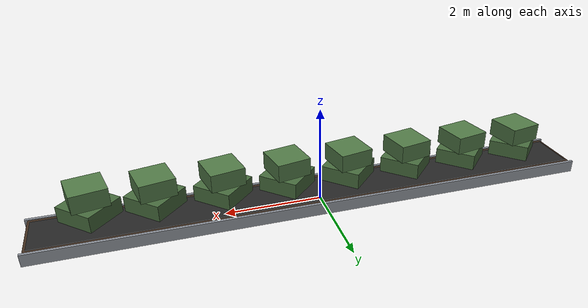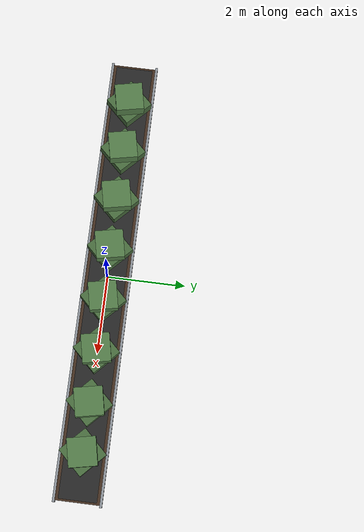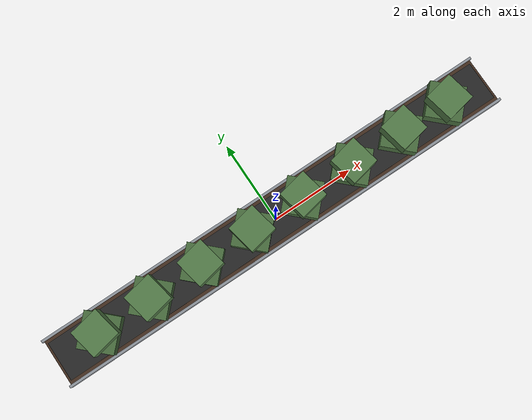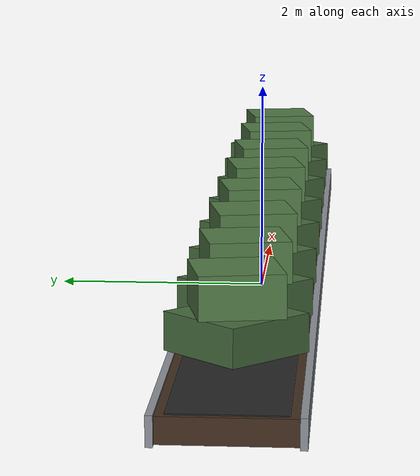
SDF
<?xml version="1.0" ?>
<sdf version="1.9">
  <model name="eggplant_bed">
    <static>true</static>
    <link name="bed_link">
      <pose>0 0 0 0 0 0</pose>
      <!-- Raised Bed Soil & Structure -->
      <visual name="soil_surface">
        <pose>0 0 0.12 0 0 0</pose>
        <geometry><box><size>11.4 1.1 0.22</size></box></geometry>
        <material><ambient>0.2 0.14 0.09 1</ambient><diffuse>0.26 0.18 0.12 1</diffuse></material>
      </visual>
      <visual name="mulch_strip">
        <pose>0 0 0.235 0 0 0</pose>
        <geometry><box><size>11.3 0.95 0.01</size></box></geometry>
        <material><ambient>0.1 0.1 0.1 1</ambient><diffuse>0.15 0.15 0.15 1</diffuse></material>
      </visual>
      <visual name="border_left">
        <pose>0 -0.58 0.125 0 0 0</pose>
        <geometry><box><size>11.5 0.06 0.25</size></box></geometry>
        <material><ambient>0.45 0.47 0.5 1</ambient><diffuse>0.55 0.57 0.6 1</diffuse></material>
      </visual>
      <visual name="border_right">
        <pose>0 0.58 0.125 0 0 0</pose>
        <geometry><box><size>11.5 0.06 0.25</size></box></geometry>
        <material><ambient>0.45 0.47 0.5 1</ambient><diffuse>0.55 0.57 0.6 1</diffuse></material>
      </visual>
      <visual name="canopy_low_1"><pose>-4.5 0 0.6 0 0 0.8</pose><geometry><box><size>0.82 0.82 0.32</size></box></geometry><material><ambient>0.2 0.32 0.18 1</ambient><diffuse>0.28 0.42 0.24 1</diffuse></material></visual>
      <visual name="canopy_top_1"><pose>-4.5 0 0.95 0 0 0.2</pose><geometry><box><size>0.7 0.7 0.36</size></box></geometry><material><ambient>0.24 0.36 0.2 1</ambient><diffuse>0.32 0.48 0.28 1</diffuse></material></visual>
      <visual name="egg_top_1"><pose>-4.32 0.14 0.85 0.3 0 0</pose><geometry><cylinder><radius>0.085</radius><length>0.26</length></cylinder></geometry><material><ambient>0.2 0.02 0.38 1</ambient><diffuse>0.32 0.04 0.58 1</diffuse></material></visual>
      <visual name="egg_calyx_1"><pose>-4.32 0.14 0.98 0 0 0</pose><geometry><cylinder><radius>0.05</radius><length>0.05</length></cylinder></geometry><material><ambient>0.2 0.5 0.2 1</ambient><diffuse>0.28 0.65 0.28 1</diffuse></material></visual>
      <visual name="egg_mid_1"><pose>-4.7 -0.16 0.75 -0.3 0 0</pose><geometry><cylinder><radius>0.08</radius><length>0.25</length></cylinder></geometry><material><ambient>0.2 0.02 0.38 1</ambient><diffuse>0.32 0.04 0.58 1</diffuse></material></visual>
      <visual name="canopy_low_2"><pose>-3.2 0 0.6 0 0 0.8</pose><geometry><box><size>0.82 0.82 0.32</size></box></geometry><material><ambient>0.2 0.32 0.18 1</ambient><diffuse>0.28 0.42 0.24 1</diffuse></material></visual>
      <visual name="canopy_top_2"><pose>-3.2 0 0.95 0 0 0.2</pose><geometry><box><size>0.7 0.7 0.36</size></box></geometry><material><ambient>0.24 0.36 0.2 1</ambient><diffuse>0.32 0.48 0.28 1</diffuse></material></visual>
      <visual name="egg_top_2"><pose>-3.02 0.14 0.85 0.3 0 0</pose><geometry><cylinder><radius>0.085</radius><length>0.26</length></cylinder></geometry><material><ambient>0.2 0.02 0.38 1</ambient><diffuse>0.32 0.04 0.58 1</diffuse></material></visual>
      <visual name="egg_calyx_2"><pose>-3.02 0.14 0.98 0 0 0</pose><geometry><cylinder><radius>0.05</radius><length>0.05</length></cylinder></geometry><material><ambient>0.2 0.5 0.2 1</ambient><diffuse>0.28 0.65 0.28 1</diffuse></material></visual>
      <visual name="egg_mid_2"><pose>-3.4000000000000004 -0.16 0.75 -0.3 0 0</pose><geometry><cylinder><radius>0.08</radius><length>0.25</length></cylinder></geometry><material><ambient>0.2 0.02 0.38 1</ambient><diffuse>0.32 0.04 0.58 1</diffuse></material></visual>
      <visual name="canopy_low_3"><pose>-1.9 0 0.6 0 0 0.8</pose><geometry><box><size>0.82 0.82 0.32</size></box></geometry><material><ambient>0.2 0.32 0.18 1</ambient><diffuse>0.28 0.42 0.24 1</diffuse></material></visual>
      <visual name="canopy_top_3"><pose>-1.9 0 0.95 0 0 0.2</pose><geometry><box><size>0.7 0.7 0.36</size></box></geometry><material><ambient>0.24 0.36 0.2 1</ambient><diffuse>0.32 0.48 0.28 1</diffuse></material></visual>
      <visual name="egg_top_3"><pose>-1.72 0.14 0.85 0.3 0 0</pose><geometry><cylinder><radius>0.085</radius><length>0.26</length></cylinder></geometry><material><ambient>0.2 0.02 0.38 1</ambient><diffuse>0.32 0.04 0.58 1</diffuse></material></visual>
      <visual name="egg_calyx_3"><pose>-1.72 0.14 0.98 0 0 0</pose><geometry><cylinder><radius>0.05</radius><length>0.05</length></cylinder></geometry><material><ambient>0.2 0.5 0.2 1</ambient><diffuse>0.28 0.65 0.28 1</diffuse></material></visual>
      <visual name="egg_mid_3"><pose>-2.1 -0.16 0.75 -0.3 0 0</pose><geometry><cylinder><radius>0.08</radius><length>0.25</length></cylinder></geometry><material><ambient>0.2 0.02 0.38 1</ambient><diffuse>0.32 0.04 0.58 1</diffuse></material></visual>
      <visual name="canopy_low_4"><pose>-0.6 0 0.6 0 0 0.8</pose><geometry><box><size>0.82 0.82 0.32</size></box></geometry><material><ambient>0.2 0.32 0.18 1</ambient><diffuse>0.28 0.42 0.24 1</diffuse></material></visual>
      <visual name="canopy_top_4"><pose>-0.6 0 0.95 0 0 0.2</pose><geometry><box><size>0.7 0.7 0.36</size></box></geometry><material><ambient>0.24 0.36 0.2 1</ambient><diffuse>0.32 0.48 0.28 1</diffuse></material></visual>
      <visual name="egg_top_4"><pose>-0.42 0.14 0.85 0.3 0 0</pose><geometry><cylinder><radius>0.085</radius><length>0.26</length></cylinder></geometry><material><ambient>0.2 0.02 0.38 1</ambient><diffuse>0.32 0.04 0.58 1</diffuse></material></visual>
      <visual name="egg_calyx_4"><pose>-0.42 0.14 0.98 0 0 0</pose><geometry><cylinder><radius>0.05</radius><length>0.05</length></cylinder></geometry><material><ambient>0.2 0.5 0.2 1</ambient><diffuse>0.28 0.65 0.28 1</diffuse></material></visual>
      <visual name="egg_mid_4"><pose>-0.8 -0.16 0.75 -0.3 0 0</pose><geometry><cylinder><radius>0.08</radius><length>0.25</length></cylinder></geometry><material><ambient>0.2 0.02 0.38 1</ambient><diffuse>0.32 0.04 0.58 1</diffuse></material></visual>
      <visual name="canopy_low_5"><pose>0.7 0 0.6 0 0 0.8</pose><geometry><box><size>0.82 0.82 0.32</size></box></geometry><material><ambient>0.2 0.32 0.18 1</ambient><diffuse>0.28 0.42 0.24 1</diffuse></material></visual>
      <visual name="canopy_top_5"><pose>0.7 0 0.95 0 0 0.2</pose><geometry><box><size>0.7 0.7 0.36</size></box></geometry><material><ambient>0.24 0.36 0.2 1</ambient><diffuse>0.32 0.48 0.28 1</diffuse></material></visual>
      <visual name="egg_top_5"><pose>0.8799999999999999 0.14 0.85 0.3 0 0</pose><geometry><cylinder><radius>0.085</radius><length>0.26</length></cylinder></geometry><material><ambient>0.2 0.02 0.38 1</ambient><diffuse>0.32 0.04 0.58 1</diffuse></material></visual>
      <visual name="egg_calyx_5"><pose>0.8799999999999999 0.14 0.98 0 0 0</pose><geometry><cylinder><radius>0.05</radius><length>0.05</length></cylinder></geometry><material><ambient>0.2 0.5 0.2 1</ambient><diffuse>0.28 0.65 0.28 1</diffuse></material></visual>
      <visual name="egg_mid_5"><pose>0.49999999999999994 -0.16 0.75 -0.3 0 0</pose><geometry><cylinder><radius>0.08</radius><length>0.25</length></cylinder></geometry><material><ambient>0.2 0.02 0.38 1</ambient><diffuse>0.32 0.04 0.58 1</diffuse></material></visual>
      <visual name="canopy_low_6"><pose>2.0 0 0.6 0 0 0.8</pose><geometry><box><size>0.82 0.82 0.32</size></box></geometry><material><ambient>0.2 0.32 0.18 1</ambient><diffuse>0.28 0.42 0.24 1</diffuse></material></visual>
      <visual name="canopy_top_6"><pose>2.0 0 0.95 0 0 0.2</pose><geometry><box><size>0.7 0.7 0.36</size></box></geometry><material><ambient>0.24 0.36 0.2 1</ambient><diffuse>0.32 0.48 0.28 1</diffuse></material></visual>
      <visual name="egg_top_6"><pose>2.18 0.14 0.85 0.3 0 0</pose><geometry><cylinder><radius>0.085</radius><length>0.26</length></cylinder></geometry><material><ambient>0.2 0.02 0.38 1</ambient><diffuse>0.32 0.04 0.58 1</diffuse></material></visual>
      <visual name="egg_calyx_6"><pose>2.18 0.14 0.98 0 0 0</pose><geometry><cylinder><radius>0.05</radius><length>0.05</length></cylinder></geometry><material><ambient>0.2 0.5 0.2 1</ambient><diffuse>0.28 0.65 0.28 1</diffuse></material></visual>
      <visual name="egg_mid_6"><pose>1.8 -0.16 0.75 -0.3 0 0</pose><geometry><cylinder><radius>0.08</radius><length>0.25</length></cylinder></geometry><material><ambient>0.2 0.02 0.38 1</ambient><diffuse>0.32 0.04 0.58 1</diffuse></material></visual>
      <visual name="canopy_low_7"><pose>3.3 0 0.6 0 0 0.8</pose><geometry><box><size>0.82 0.82 0.32</size></box></geometry><material><ambient>0.2 0.32 0.18 1</ambient><diffuse>0.28 0.42 0.24 1</diffuse></material></visual>
      <visual name="canopy_top_7"><pose>3.3 0 0.95 0 0 0.2</pose><geometry><box><size>0.7 0.7 0.36</size></box></geometry><material><ambient>0.24 0.36 0.2 1</ambient><diffuse>0.32 0.48 0.28 1</diffuse></material></visual>
      <visual name="egg_top_7"><pose>3.48 0.14 0.85 0.3 0 0</pose><geometry><cylinder><radius>0.085</radius><length>0.26</length></cylinder></geometry><material><ambient>0.2 0.02 0.38 1</ambient><diffuse>0.32 0.04 0.58 1</diffuse></material></visual>
      <visual name="egg_calyx_7"><pose>3.48 0.14 0.98 0 0 0</pose><geometry><cylinder><radius>0.05</radius><length>0.05</length></cylinder></geometry><material><ambient>0.2 0.5 0.2 1</ambient><diffuse>0.28 0.65 0.28 1</diffuse></material></visual>
      <visual name="egg_mid_7"><pose>3.0999999999999996 -0.16 0.75 -0.3 0 0</pose><geometry><cylinder><radius>0.08</radius><length>0.25</length></cylinder></geometry><material><ambient>0.2 0.02 0.38 1</ambient><diffuse>0.32 0.04 0.58 1</diffuse></material></visual>
      <visual name="canopy_low_8"><pose>4.5 0 0.6 0 0 0.8</pose><geometry><box><size>0.82 0.82 0.32</size></box></geometry><material><ambient>0.2 0.32 0.18 1</ambient><diffuse>0.28 0.42 0.24 1</diffuse></material></visual>
      <visual name="canopy_top_8"><pose>4.5 0 0.95 0 0 0.2</pose><geometry><box><size>0.7 0.7 0.36</size></box></geometry><material><ambient>0.24 0.36 0.2 1</ambient><diffuse>0.32 0.48 0.28 1</diffuse></material></visual>
      <visual name="egg_top_8"><pose>4.68 0.14 0.85 0.3 0 0</pose><geometry><cylinder><radius>0.085</radius><length>0.26</length></cylinder></geometry><material><ambient>0.2 0.02 0.38 1</ambient><diffuse>0.32 0.04 0.58 1</diffuse></material></visual>
      <visual name="egg_calyx_8"><pose>4.68 0.14 0.98 0 0 0</pose><geometry><cylinder><radius>0.05</radius><length>0.05</length></cylinder></geometry><material><ambient>0.2 0.5 0.2 1</ambient><diffuse>0.28 0.65 0.28 1</diffuse></material></visual>
      <visual name="egg_mid_8"><pose>4.3 -0.16 0.75 -0.3 0 0</pose><geometry><cylinder><radius>0.08</radius><length>0.25</length></cylinder></geometry><material><ambient>0.2 0.02 0.38 1</ambient><diffuse>0.32 0.04 0.58 1</diffuse></material></visual>
      <!-- Single Bed Physics Collision -->
      <collision name="bed_col">
        <pose>0 0 0.5 0 0 0</pose>
        <geometry><box><size>11.5 1.2 1.0</size></box></geometry>
      </collision>
    </link>
  </model>
</sdf>
